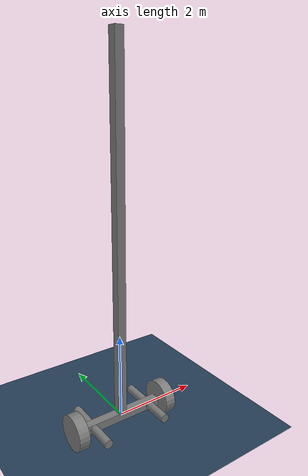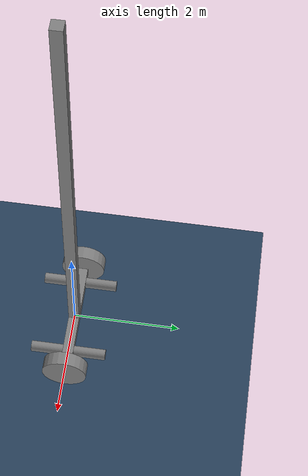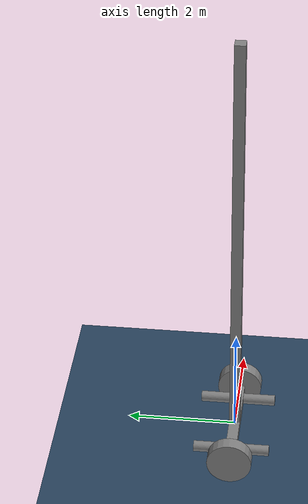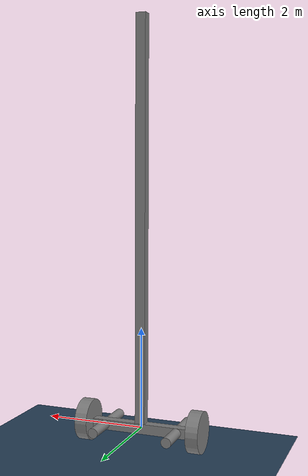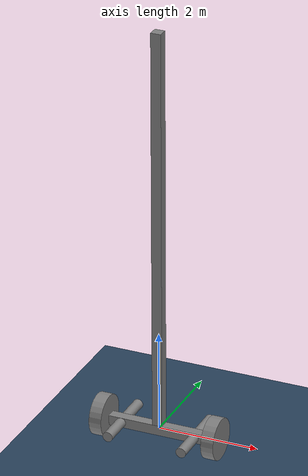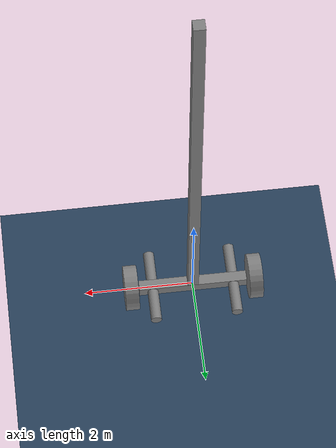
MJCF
<mujoco>
 <asset>
    <texture type="skybox" builtin="gradient" rgb1="0.8 0.8 0.8" rgb2="0 0 0" width="512" height="3072"/>
    <texture name="floor_tex" type="2d" builtin="checker" rgb1=".2 .3 .4" rgb2=".1 .2 .3" width="100" height="100" />
    <material name="floor_material" texture="floor_tex" texuniform="true" />
  </asset>

  <worldbody>
    <light cutoff="100" diffuse="1 1 1" dir="-0 0 -1.2" directional="true" exponent="1" pos="0 0 1.3" specular=".1 .1 .1"/>
    <geom conaffinity="1" condim="3" material="floor_material" name="floor" pos="0 0 -0.50" size="40 40 40" type="plane" rgba="0.5 0.5 0.5 1.0"/>

    <body name="base">
        <joint type="free"/>
        <body name="lower">
            <geom type="box" size="0.1 0.1 1" quat="0.707107 0 0.707107 0" mass="2000"/>

            <body name="upper" pos="0 0 4.1">
                <geom type="box" size="0.1 0.1 4" quat="0  0.707107 0 0"/>
            </body>

            <body name="right_wheel" pos="1.15 0 0.05">
                <geom type="cylinder" size="0.4125 0.125" quat="0 0.707107 0 0.707107"/>
                <joint name="right_wheel" type="hinge" axis="-1 0 0"/>
            </body>

            <body name="left_wheel" pos="-1.15 0 0.05">
                <geom type="cylinder" size="0.4125 0.125" quat="0 0.707107 0 0.707107"/>
                <joint name="left_wheel" type="hinge" axis="-1 0 0"/>
            </body>

            <!-- Balance Beams? -->
            <body pos="0.75 0 0">
                <geom type="cylinder" size="0.1 0.7" quat="0.707107 0.707107 0 0" mass="1e-5"/>
            </body>

            <body pos="-0.75 0 0">
                <geom type="cylinder" size="0.1 0.7" quat="0.707107 0.707107 0 0" mass="1e-5"/>
            </body>
        </body>
    </body>
  </worldbody>
  <actuator>
  </actuator>
</mujoco>
